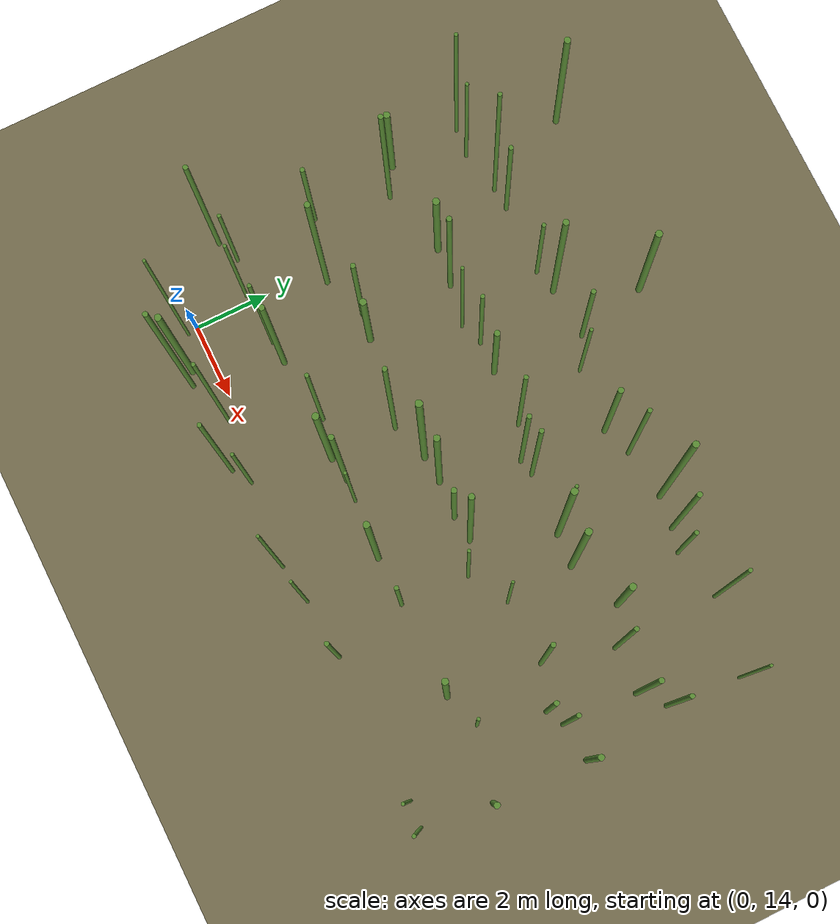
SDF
<sdf version="1.9">
 <world name="bamboo_field">
  <model name="ground_plane">
   <static>true</static>
   <link name="link">
    <collision name="collision">
     <geometry><plane><normal>0 0 1</normal><size>80.0 80.0</size></plane></geometry>
    </collision>
    <visual name="visual">
     <geometry><plane><normal>0 0 1</normal><size>80.0 80.0</size></plane></geometry>
     <material><diffuse>0.45 0.42 0.30 1</diffuse></material>
    </visual>
   </link>
  </model>
  <model name="bamboo_1376">
   <static>true</static>
   <pose>0.06276575468001566 13.732099643668107 3.6653601888361687 0 0 0</pose>
   <link name="link">
    <collision name="collision">
     <geometry>
      <cylinder><radius>0.04054337881371032</radius><length>7.330720377672337</length></cylinder>
     </geometry>
    </collision>
    <visual name="visual">
     <geometry>
      <cylinder><radius>0.04054337881371032</radius><length>7.330720377672337</length></cylinder>
     </geometry>
     <material><diffuse>0.35 0.55 0.20 1</diffuse><specular>0.1 0.1 0.1 1</specular></material>
    </visual>
   </link>
  </model>
  <model name="bamboo_1377">
   <static>true</static>
   <pose>1.0050426130687504 13.415485267167915 3.003744874984532 0 0 0</pose>
   <link name="link">
    <collision name="collision">
     <geometry>
      <cylinder><radius>0.08595751150401873</radius><length>6.007489749969064</length></cylinder>
     </geometry>
    </collision>
    <visual name="visual">
     <geometry>
      <cylinder><radius>0.08595751150401873</radius><length>6.007489749969064</length></cylinder>
     </geometry>
     <material><diffuse>0.35 0.55 0.20 1</diffuse><specular>0.1 0.1 0.1 1</specular></material>
    </visual>
   </link>
  </model>
  <model name="bamboo_1378">
   <static>true</static>
   <pose>1.3588092464139743 13.267221054472156 3.9558525674204983 0 0 0</pose>
   <link name="link">
    <collision name="collision">
     <geometry>
      <cylinder><radius>0.06607505223809193</radius><length>7.911705134840997</length></cylinder>
     </geometry>
    </collision>
    <visual name="visual">
     <geometry>
      <cylinder><radius>0.06607505223809193</radius><length>7.911705134840997</length></cylinder>
     </geometry>
     <material><diffuse>0.35 0.55 0.20 1</diffuse><specular>0.1 0.1 0.1 1</specular></material>
    </visual>
   </link>
  </model>
  <model name="bamboo_1379">
   <static>true</static>
   <pose>2.6103394028904927 13.70811517669843 3.491991474866679 0 0 0</pose>
   <link name="link">
    <collision name="collision">
     <geometry>
      <cylinder><radius>0.049184688636103625</radius><length>6.983982949733358</length></cylinder>
     </geometry>
    </collision>
    <visual name="visual">
     <geometry>
      <cylinder><radius>0.049184688636103625</radius><length>6.983982949733358</length></cylinder>
     </geometry>
     <material><diffuse>0.35 0.55 0.20 1</diffuse><specular>0.1 0.1 0.1 1</specular></material>
    </visual>
   </link>
  </model>
  <model name="bamboo_1380">
   <static>true</static>
   <pose>3.824534511451273 13.234293135725002 3.2837816686198096 0 0 0</pose>
   <link name="link">
    <collision name="collision">
     <geometry>
      <cylinder><radius>0.05565948302026836</radius><length>6.567563337239619</length></cylinder>
     </geometry>
    </collision>
    <visual name="visual">
     <geometry>
      <cylinder><radius>0.05565948302026836</radius><length>6.567563337239619</length></cylinder>
     </geometry>
     <material><diffuse>0.35 0.55 0.20 1</diffuse><specular>0.1 0.1 0.1 1</specular></material>
    </visual>
   </link>
  </model>
  <model name="bamboo_1381">
   <static>true</static>
   <pose>4.321258643424014 13.541149201019804 2.2168017641365534 0 0 0</pose>
   <link name="link">
    <collision name="collision">
     <geometry>
      <cylinder><radius>0.04973652946573479</radius><length>4.433603528273107</length></cylinder>
     </geometry>
    </collision>
    <visual name="visual">
     <geometry>
      <cylinder><radius>0.04973652946573479</radius><length>4.433603528273107</length></cylinder>
     </geometry>
     <material><diffuse>0.35 0.55 0.20 1</diffuse><specular>0.1 0.1 0.1 1</specular></material>
    </visual>
   </link>
  </model>
  <model name="bamboo_1382">
   <static>true</static>
   <pose>6.64788413049963 13.335300162852972 3.1942215116467625 0 0 0</pose>
   <link name="link">
    <collision name="collision">
     <geometry>
      <cylinder><radius>0.043265958358313865</radius><length>6.388443023293525</length></cylinder>
     </geometry>
    </collision>
    <visual name="visual">
     <geometry>
      <cylinder><radius>0.043265958358313865</radius><length>6.388443023293525</length></cylinder>
     </geometry>
     <material><diffuse>0.35 0.55 0.20 1</diffuse><specular>0.1 0.1 0.1 1</specular></material>
    </visual>
   </link>
  </model>
  <model name="bamboo_1383">
   <static>true</static>
   <pose>7.722659875794584 13.514273853273298 2.5383360249555014 0 0 0</pose>
   <link name="link">
    <collision name="collision">
     <geometry>
      <cylinder><radius>0.04161833958340256</radius><length>5.076672049911003</length></cylinder>
     </geometry>
    </collision>
    <visual name="visual">
     <geometry>
      <cylinder><radius>0.04161833958340256</radius><length>5.076672049911003</length></cylinder>
     </geometry>
     <material><diffuse>0.35 0.55 0.20 1</diffuse><specular>0.1 0.1 0.1 1</specular></material>
    </visual>
   </link>
  </model>
  <model name="bamboo_1385">
   <static>true</static>
   <pose>9.33344064888018 13.626897771461467 2.389767413056976 0 0 0</pose>
   <link name="link">
    <collision name="collision">
     <geometry>
      <cylinder><radius>0.059906819425603774</radius><length>4.779534826113952</length></cylinder>
     </geometry>
    </collision>
    <visual name="visual">
     <geometry>
      <cylinder><radius>0.059906819425603774</radius><length>4.779534826113952</length></cylinder>
     </geometry>
     <material><diffuse>0.35 0.55 0.20 1</diffuse><specular>0.1 0.1 0.1 1</specular></material>
    </visual>
   </link>
  </model>
  <model name="bamboo_1388">
   <static>true</static>
   <pose>13.35888323042398 13.684149307770708 3.436925414675028 0 0 0</pose>
   <link name="link">
    <collision name="collision">
     <geometry>
      <cylinder><radius>0.044664543253488204</radius><length>6.873850829350056</length></cylinder>
     </geometry>
    </collision>
    <visual name="visual">
     <geometry>
      <cylinder><radius>0.044664543253488204</radius><length>6.873850829350056</length></cylinder>
     </geometry>
     <material><diffuse>0.35 0.55 0.20 1</diffuse><specular>0.1 0.1 0.1 1</specular></material>
    </visual>
   </link>
  </model>
  <model name="bamboo_1389">
   <static>true</static>
   <pose>14.062900400942523 13.629020531854424 3.927334718430339 0 0 0</pose>
   <link name="link">
    <collision name="collision">
     <geometry>
      <cylinder><radius>0.048052351323297854</radius><length>7.854669436860678</length></cylinder>
     </geometry>
    </collision>
    <visual name="visual">
     <geometry>
      <cylinder><radius>0.048052351323297854</radius><length>7.854669436860678</length></cylinder>
     </geometry>
     <material><diffuse>0.35 0.55 0.20 1</diffuse><specular>0.1 0.1 0.1 1</specular></material>
    </visual>
   </link>
  </model>
  <model name="bamboo_1439">
   <static>true</static>
   <pose>-1.8081427291935877 15.480619153829041 3.2280099928377997 0 0 0</pose>
   <link name="link">
    <collision name="collision">
     <geometry>
      <cylinder><radius>0.06419554963518531</radius><length>6.456019985675599</length></cylinder>
     </geometry>
    </collision>
    <visual name="visual">
     <geometry>
      <cylinder><radius>0.06419554963518531</radius><length>6.456019985675599</length></cylinder>
     </geometry>
     <material><diffuse>0.35 0.55 0.20 1</diffuse><specular>0.1 0.1 0.1 1</specular></material>
    </visual>
   </link>
  </model>
  <model name="bamboo_1440">
   <static>true</static>
   <pose>-1.1778752151965792 15.727968670633919 2.0591104855530586 0 0 0</pose>
   <link name="link">
    <collision name="collision">
     <geometry>
      <cylinder><radius>0.04964226298261835</radius><length>4.118220971106117</length></cylinder>
     </geometry>
    </collision>
    <visual name="visual">
     <geometry>
      <cylinder><radius>0.04964226298261835</radius><length>4.118220971106117</length></cylinder>
     </geometry>
     <material><diffuse>0.35 0.55 0.20 1</diffuse><specular>0.1 0.1 0.1 1</specular></material>
    </visual>
   </link>
  </model>
  <model name="bamboo_1441">
   <static>true</static>
   <pose>-0.2037857214381863 15.52358014399858 2.4339155708178524 0 0 0</pose>
   <link name="link">
    <collision name="collision">
     <geometry>
      <cylinder><radius>0.04573942284977897</radius><length>4.867831141635705</length></cylinder>
     </geometry>
    </collision>
    <visual name="visual">
     <geometry>
      <cylinder><radius>0.04573942284977897</radius><length>4.867831141635705</length></cylinder>
     </geometry>
     <material><diffuse>0.35 0.55 0.20 1</diffuse><specular>0.1 0.1 0.1 1</specular></material>
    </visual>
   </link>
  </model>
  <model name="bamboo_1442">
   <static>true</static>
   <pose>1.225294581158085 15.61373473175355 2.9631497442608703 0 0 0</pose>
   <link name="link">
    <collision name="collision">
     <geometry>
      <cylinder><radius>0.0533795266127834</radius><length>5.926299488521741</length></cylinder>
     </geometry>
    </collision>
    <visual name="visual">
     <geometry>
      <cylinder><radius>0.0533795266127834</radius><length>5.926299488521741</length></cylinder>
     </geometry>
     <material><diffuse>0.35 0.55 0.20 1</diffuse><specular>0.1 0.1 0.1 1</specular></material>
    </visual>
   </link>
  </model>
  <model name="bamboo_1443">
   <static>true</static>
   <pose>1.8374924568279287 15.649706872110336 2.9916034107813534 0 0 0</pose>
   <link name="link">
    <collision name="collision">
     <geometry>
      <cylinder><radius>0.07725972280241986</radius><length>5.983206821562707</length></cylinder>
     </geometry>
    </collision>
    <visual name="visual">
     <geometry>
      <cylinder><radius>0.07725972280241986</radius><length>5.983206821562707</length></cylinder>
     </geometry>
     <material><diffuse>0.35 0.55 0.20 1</diffuse><specular>0.1 0.1 0.1 1</specular></material>
    </visual>
   </link>
  </model>
  <model name="bamboo_1444">
   <static>true</static>
   <pose>3.639231330929693 15.906261573033762 2.7856518492533953 0 0 0</pose>
   <link name="link">
    <collision name="collision">
     <geometry>
      <cylinder><radius>0.054054138199192026</radius><length>5.5713036985067905</length></cylinder>
     </geometry>
    </collision>
    <visual name="visual">
     <geometry>
      <cylinder><radius>0.054054138199192026</radius><length>5.5713036985067905</length></cylinder>
     </geometry>
     <material><diffuse>0.35 0.55 0.20 1</diffuse><specular>0.1 0.1 0.1 1</specular></material>
    </visual>
   </link>
  </model>
  <model name="bamboo_1445">
   <static>true</static>
   <pose>4.673311737382143 15.666363491210515 2.9756635790090513 0 0 0</pose>
   <link name="link">
    <collision name="collision">
     <geometry>
      <cylinder><radius>0.08768810373621447</radius><length>5.951327158018103</length></cylinder>
     </geometry>
    </collision>
    <visual name="visual">
     <geometry>
      <cylinder><radius>0.08768810373621447</radius><length>5.951327158018103</length></cylinder>
     </geometry>
     <material><diffuse>0.35 0.55 0.20 1</diffuse><specular>0.1 0.1 0.1 1</specular></material>
    </visual>
   </link>
  </model>
  <model name="bamboo_1446">
   <static>true</static>
   <pose>5.354662394995448 15.766746790275224 3.214591300234882 0 0 0</pose>
   <link name="link">
    <collision name="collision">
     <geometry>
      <cylinder><radius>0.07114554811550643</radius><length>6.429182600469764</length></cylinder>
     </geometry>
    </collision>
    <visual name="visual">
     <geometry>
      <cylinder><radius>0.07114554811550643</radius><length>6.429182600469764</length></cylinder>
     </geometry>
     <material><diffuse>0.35 0.55 0.20 1</diffuse><specular>0.1 0.1 0.1 1</specular></material>
    </visual>
   </link>
  </model>
  <model name="bamboo_1447">
   <static>true</static>
   <pose>5.92735951433591 15.72769713306529 2.334498105785991 0 0 0</pose>
   <link name="link">
    <collision name="collision">
     <geometry>
      <cylinder><radius>0.0432133126442892</radius><length>4.668996211571982</length></cylinder>
     </geometry>
    </collision>
    <visual name="visual">
     <geometry>
      <cylinder><radius>0.0432133126442892</radius><length>4.668996211571982</length></cylinder>
     </geometry>
     <material><diffuse>0.35 0.55 0.20 1</diffuse><specular>0.1 0.1 0.1 1</specular></material>
    </visual>
   </link>
  </model>
  <model name="bamboo_1448">
   <static>true</static>
   <pose>7.514076878264197 15.61632470096504 3.2901959411856243 0 0 0</pose>
   <link name="link">
    <collision name="collision">
     <geometry>
      <cylinder><radius>0.08133432093160305</radius><length>6.580391882371249</length></cylinder>
     </geometry>
    </collision>
    <visual name="visual">
     <geometry>
      <cylinder><radius>0.08133432093160305</radius><length>6.580391882371249</length></cylinder>
     </geometry>
     <material><diffuse>0.35 0.55 0.20 1</diffuse><specular>0.1 0.1 0.1 1</specular></material>
    </visual>
   </link>
  </model>
  <model name="bamboo_1449">
   <static>true</static>
   <pose>8.8393918769388 15.630122365031541 2.1452806624052547 0 0 0</pose>
   <link name="link">
    <collision name="collision">
     <geometry>
      <cylinder><radius>0.05788722583849659</radius><length>4.2905613248105094</length></cylinder>
     </geometry>
    </collision>
    <visual name="visual">
     <geometry>
      <cylinder><radius>0.05788722583849659</radius><length>4.2905613248105094</length></cylinder>
     </geometry>
     <material><diffuse>0.35 0.55 0.20 1</diffuse><specular>0.1 0.1 0.1 1</specular></material>
    </visual>
   </link>
  </model>
  <model name="bamboo_1450">
   <static>true</static>
   <pose>11.443461290725995 15.639660984229462 3.797487947831284 0 0 0</pose>
   <link name="link">
    <collision name="collision">
     <geometry>
      <cylinder><radius>0.07976197105704294</radius><length>7.594975895662568</length></cylinder>
     </geometry>
    </collision>
    <visual name="visual">
     <geometry>
      <cylinder><radius>0.07976197105704294</radius><length>7.594975895662568</length></cylinder>
     </geometry>
     <material><diffuse>0.35 0.55 0.20 1</diffuse><specular>0.1 0.1 0.1 1</specular></material>
    </visual>
   </link>
  </model>
  <model name="bamboo_1451">
   <static>true</static>
   <pose>12.416566708669706 15.988099452556602 2.5560969370047095 0 0 0</pose>
   <link name="link">
    <collision name="collision">
     <geometry>
      <cylinder><radius>0.04514600968396615</radius><length>5.112193874009419</length></cylinder>
     </geometry>
    </collision>
    <visual name="visual">
     <geometry>
      <cylinder><radius>0.04514600968396615</radius><length>5.112193874009419</length></cylinder>
     </geometry>
     <material><diffuse>0.35 0.55 0.20 1</diffuse><specular>0.1 0.1 0.1 1</specular></material>
    </visual>
   </link>
  </model>
  <model name="bamboo_1452">
   <static>true</static>
   <pose>14.31614929662233 15.507733642531589 2.635566589435853 0 0 0</pose>
   <link name="link">
    <collision name="collision">
     <geometry>
      <cylinder><radius>0.07781006017148702</radius><length>5.271133178871706</length></cylinder>
     </geometry>
    </collision>
    <visual name="visual">
     <geometry>
      <cylinder><radius>0.07781006017148702</radius><length>5.271133178871706</length></cylinder>
     </geometry>
     <material><diffuse>0.35 0.55 0.20 1</diffuse><specular>0.1 0.1 0.1 1</specular></material>
    </visual>
   </link>
  </model>
  <model name="bamboo_1506">
   <static>true</static>
   <pose>-1.2953072074202074 18.02023917077137 2.108692468474196 0 0 0</pose>
   <link name="link">
    <collision name="collision">
     <geometry>
      <cylinder><radius>0.0630110376474254</radius><length>4.217384936948392</length></cylinder>
     </geometry>
    </collision>
    <visual name="visual">
     <geometry>
      <cylinder><radius>0.0630110376474254</radius><length>4.217384936948392</length></cylinder>
     </geometry>
     <material><diffuse>0.35 0.55 0.20 1</diffuse><specular>0.1 0.1 0.1 1</specular></material>
    </visual>
   </link>
  </model>
  <model name="bamboo_1507">
   <static>true</static>
   <pose>-0.036612629181539846 17.671228485794632 2.581153848252347 0 0 0</pose>
   <link name="link">
    <collision name="collision">
     <geometry>
      <cylinder><radius>0.044869953104086265</radius><length>5.162307696504694</length></cylinder>
     </geometry>
    </collision>
    <visual name="visual">
     <geometry>
      <cylinder><radius>0.044869953104086265</radius><length>5.162307696504694</length></cylinder>
     </geometry>
     <material><diffuse>0.35 0.55 0.20 1</diffuse><specular>0.1 0.1 0.1 1</specular></material>
    </visual>
   </link>
  </model>
  <model name="bamboo_1508">
   <static>true</static>
   <pose>0.3878199350193897 17.58285828298778 3.4787268447421695 0 0 0</pose>
   <link name="link">
    <collision name="collision">
     <geometry>
      <cylinder><radius>0.07372064996913852</radius><length>6.957453689484339</length></cylinder>
     </geometry>
    </collision>
    <visual name="visual">
     <geometry>
      <cylinder><radius>0.07372064996913852</radius><length>6.957453689484339</length></cylinder>
     </geometry>
     <material><diffuse>0.35 0.55 0.20 1</diffuse><specular>0.1 0.1 0.1 1</specular></material>
    </visual>
   </link>
  </model>
  <model name="bamboo_1509">
   <static>true</static>
   <pose>1.5813430416054775 18.035892155286362 2.4470871671297 0 0 0</pose>
   <link name="link">
    <collision name="collision">
     <geometry><cylinder><radius>0.06476523262873393</radius><length>4.8941743342594</length></cylinder></geometry>
    </collision>
    <visual name="visual">
     <geometry><cylinder><radius>0.06476523262873393</radius><length>4.8941743342594</length></cylinder></geometry>
     <material><diffuse>0.35 0.55 0.20 1</diffuse><specular>0.1 0.1 0.1 1</specular></material>
    </visual>
   </link>
  </model>
  <model name="bamboo_1510">
   <static>true</static>
   <pose>2.268191993035298 17.920755456147386 2.012901601279033 0 0 0</pose>
   <link name="link">
    <collision name="collision">
     <geometry>
      <cylinder><radius>0.08945793149491071</radius><length>4.025803202558066</length></cylinder>
     </geometry>
    </collision>
    <visual name="visual">
     <geometry>
      <cylinder><radius>0.08945793149491071</radius><length>4.025803202558066</length></cylinder>
     </geometry>
     <material><diffuse>0.35 0.55 0.20 1</diffuse><specular>0.1 0.1 0.1 1</specular></material>
    </visual>
   </link>
  </model>
  <model name="bamboo_1511">
   <static>true</static>
   <pose>4.665539769736106 17.47827038150614 3.6654529050857496 0 0 0</pose>
   <link name="link">
    <collision name="collision">
     <geometry>
      <cylinder><radius>0.06368712016368522</radius><length>7.330905810171499</length></cylinder>
     </geometry>
    </collision>
    <visual name="visual">
     <geometry>
      <cylinder><radius>0.06368712016368522</radius><length>7.330905810171499</length></cylinder>
     </geometry>
     <material><diffuse>0.35 0.55 0.20 1</diffuse><specular>0.1 0.1 0.1 1</specular></material>
    </visual>
   </link>
  </model>
  <model name="bamboo_1512">
   <static>true</static>
   <pose>5.692797785457245 17.822016641567693 3.6405419146258806 0 0 0</pose>
   <link name="link">
    <collision name="collision">
     <geometry>
      <cylinder><radius>0.08913481331767288</radius><length>7.281083829251761</length></cylinder>
     </geometry>
    </collision>
    <visual name="visual">
     <geometry>
      <cylinder><radius>0.08913481331767288</radius><length>7.281083829251761</length></cylinder>
     </geometry>
     <material><diffuse>0.35 0.55 0.20 1</diffuse><specular>0.1 0.1 0.1 1</specular></material>
    </visual>
   </link>
  </model>
  <model name="bamboo_1513">
   <static>true</static>
   <pose>6.434915395688784 17.8846511836527 3.2343170363187275 0 0 0</pose>
   <link name="link">
    <collision name="collision">
     <geometry>
      <cylinder><radius>0.08296569438955162</radius><length>6.468634072637455</length></cylinder>
     </geometry>
    </collision>
    <visual name="visual">
     <geometry>
      <cylinder><radius>0.08296569438955162</radius><length>6.468634072637455</length></cylinder>
     </geometry>
     <material><diffuse>0.35 0.55 0.20 1</diffuse><specular>0.1 0.1 0.1 1</specular></material>
    </visual>
   </link>
  </model>
  <model name="bamboo_1514">
   <static>true</static>
   <pose>7.425356251937238 17.82198988622026 2.3415509836601465 0 0 0</pose>
   <link name="link">
    <collision name="collision">
     <geometry>
      <cylinder><radius>0.07287326814259659</radius><length>4.683101967320293</length></cylinder>
     </geometry>
    </collision>
    <visual name="visual">
     <geometry>
      <cylinder><radius>0.07287326814259659</radius><length>4.683101967320293</length></cylinder>
     </geometry>
     <material><diffuse>0.35 0.55 0.20 1</diffuse><specular>0.1 0.1 0.1 1</specular></material>
    </visual>
   </link>
  </model>
  <model name="bamboo_1515">
   <static>true</static>
   <pose>8.141729202756254 17.906702929883025 3.9181828288549747 0 0 0</pose>
   <link name="link">
    <collision name="collision">
     <geometry>
      <cylinder><radius>0.0733767764642908</radius><length>7.836365657709949</length></cylinder>
     </geometry>
    </collision>
    <visual name="visual">
     <geometry>
      <cylinder><radius>0.0733767764642908</radius><length>7.836365657709949</length></cylinder>
     </geometry>
     <material><diffuse>0.35 0.55 0.20 1</diffuse><specular>0.1 0.1 0.1 1</specular></material>
    </visual>
   </link>
  </model>
  <model name="bamboo_1516">
   <static>true</static>
   <pose>8.950513064757757 17.458892629486407 2.833792937002981 0 0 0</pose>
   <link name="link">
    <collision name="collision">
     <geometry>
      <cylinder><radius>0.04536679195760328</radius><length>5.667585874005962</length></cylinder>
     </geometry>
    </collision>
    <visual name="visual">
     <geometry>
      <cylinder><radius>0.04536679195760328</radius><length>5.667585874005962</length></cylinder>
     </geometry>
     <material><diffuse>0.35 0.55 0.20 1</diffuse><specular>0.1 0.1 0.1 1</specular></material>
    </visual>
   </link>
  </model>
  <model name="bamboo_1517">
   <static>true</static>
   <pose>9.987539198888337 18.064567849690093 2.605523139746242 0 0 0</pose>
   <link name="link">
    <collision name="collision">
     <geometry>
      <cylinder><radius>0.040550982199809724</radius><length>5.211046279492484</length></cylinder>
     </geometry>
    </collision>
    <visual name="visual">
     <geometry>
      <cylinder><radius>0.040550982199809724</radius><length>5.211046279492484</length></cylinder>
     </geometry>
     <material><diffuse>0.35 0.55 0.20 1</diffuse><specular>0.1 0.1 0.1 1</specular></material>
    </visual>
   </link>
  </model>
  <model name="bamboo_1518">
   <static>true</static>
   <pose>11.740569694016155 18.12654074831334 3.4461305358760086 0 0 0</pose>
   <link name="link">
    <collision name="collision">
     <geometry>
      <cylinder><radius>0.06339535537452406</radius><length>6.892261071752017</length></cylinder>
     </geometry>
    </collision>
    <visual name="visual">
     <geometry>
      <cylinder><radius>0.06339535537452406</radius><length>6.892261071752017</length></cylinder>
     </geometry>
     <material><diffuse>0.35 0.55 0.20 1</diffuse><specular>0.1 0.1 0.1 1</specular></material>
    </visual>
   </link>
  </model>
  <model name="bamboo_1519">
   <static>true</static>
   <pose>12.884193163498594 17.71275019635519 2.69766816351638 0 0 0</pose>
   <link name="link">
    <collision name="collision">
     <geometry>
      <cylinder><radius>0.06516028106614206</radius><length>5.39533632703276</length></cylinder>
     </geometry>
    </collision>
    <visual name="visual">
     <geometry>
      <cylinder><radius>0.06516028106614206</radius><length>5.39533632703276</length></cylinder>
     </geometry>
     <material><diffuse>0.35 0.55 0.20 1</diffuse><specular>0.1 0.1 0.1 1</specular></material>
    </visual>
   </link>
  </model>
  <model name="bamboo_1520">
   <static>true</static>
   <pose>13.35244599388399 17.93994080147356 3.4384182179443203 0 0 0</pose>
   <link name="link">
    <collision name="collision">
     <geometry>
      <cylinder><radius>0.05759335013327501</radius><length>6.876836435888641</length></cylinder>
     </geometry>
    </collision>
    <visual name="visual">
     <geometry>
      <cylinder><radius>0.05759335013327501</radius><length>6.876836435888641</length></cylinder>
     </geometry>
     <material><diffuse>0.35 0.55 0.20 1</diffuse><specular>0.1 0.1 0.1 1</specular></material>
    </visual>
   </link>
  </model>
  <model name="bamboo_1521">
   <static>true</static>
   <pose>14.405371097653632 18.080625184735236 2.605859770230605 0 0 0</pose>
   <link name="link">
    <collision name="collision">
     <geometry>
      <cylinder><radius>0.07813037934096304</radius><length>5.21171954046121</length></cylinder>
     </geometry>
    </collision>
    <visual name="visual">
     <geometry>
      <cylinder><radius>0.07813037934096304</radius><length>5.21171954046121</length></cylinder>
     </geometry>
     <material><diffuse>0.35 0.55 0.20 1</diffuse><specular>0.1 0.1 0.1 1</specular></material>
    </visual>
   </link>
  </model>
  <model name="bamboo_1576">
   <static>true</static>
   <pose>-1.6797496193544066 20.476362319038017 2.0510705725287215 0 0 0</pose>
   <link name="link">
    <collision name="collision">
     <geometry>
      <cylinder><radius>0.0855936329779131</radius><length>4.102141145057443</length></cylinder>
     </geometry>
    </collision>
    <visual name="visual">
     <geometry>
      <cylinder><radius>0.0855936329779131</radius><length>4.102141145057443</length></cylinder>
     </geometry>
     <material><diffuse>0.35 0.55 0.20 1</diffuse><specular>0.1 0.1 0.1 1</specular></material>
    </visual>
   </link>
  </model>
  <model name="bamboo_1577">
   <static>true</static>
   <pose>-0.9609209419964548 20.061146473229734 3.162972997320298 0 0 0</pose>
   <link name="link">
    <collision name="collision">
     <geometry>
      <cylinder><radius>0.0654091135350865</radius><length>6.325945994640596</length></cylinder>
     </geometry>
    </collision>
    <visual name="visual">
     <geometry>
      <cylinder><radius>0.0654091135350865</radius><length>6.325945994640596</length></cylinder>
     </geometry>
     <material><diffuse>0.35 0.55 0.20 1</diffuse><specular>0.1 0.1 0.1 1</specular></material>
    </visual>
   </link>
  </model>
  <model name="bamboo_1578">
   <static>true</static>
   <pose>0.8751547566339384 20.56560087830978 2.156889944600751 0 0 0</pose>
   <link name="link">
    <collision name="collision">
     <geometry>
      <cylinder><radius>0.08989104257867189</radius><length>4.313779889201502</length></cylinder>
     </geometry>
    </collision>
    <visual name="visual">
     <geometry>
      <cylinder><radius>0.08989104257867189</radius><length>4.313779889201502</length></cylinder>
     </geometry>
     <material><diffuse>0.35 0.55 0.20 1</diffuse><specular>0.1 0.1 0.1 1</specular></material>
    </visual>
   </link>
  </model>
  <model name="bamboo_1579">
   <static>true</static>
   <pose>1.9035252333894421 20.423870332030873 3.0964660604886896 0 0 0</pose>
   <link name="link">
    <collision name="collision">
     <geometry>
      <cylinder><radius>0.06872196235892339</radius><length>6.192932120977379</length></cylinder>
     </geometry>
    </collision>
    <visual name="visual">
     <geometry>
      <cylinder><radius>0.06872196235892339</radius><length>6.192932120977379</length></cylinder>
     </geometry>
     <material><diffuse>0.35 0.55 0.20 1</diffuse><specular>0.1 0.1 0.1 1</specular></material>
    </visual>
   </link>
  </model>
  <model name="bamboo_1580">
   <static>true</static>
   <pose>3.017020832408596 20.21945055923445 2.9446583190440796 0 0 0</pose>
   <link name="link">
    <collision name="collision">
     <geometry>
      <cylinder><radius>0.04257157519724295</radius><length>5.889316638088159</length></cylinder>
     </geometry>
    </collision>
    <visual name="visual">
     <geometry>
      <cylinder><radius>0.04257157519724295</radius><length>5.889316638088159</length></cylinder>
     </geometry>
     <material><diffuse>0.35 0.55 0.20 1</diffuse><specular>0.1 0.1 0.1 1</specular></material>
    </visual>
   </link>
  </model>
  <model name="bamboo_1581">
   <static>true</static>
   <pose>3.62773161104045 20.448088759415985 2.4880579907996134 0 0 0</pose>
   <link name="link">
    <collision name="collision">
     <geometry>
      <cylinder><radius>0.05465326544309762</radius><length>4.976115981599227</length></cylinder>
     </geometry>
    </collision>
    <visual name="visual">
     <geometry>
      <cylinder><radius>0.05465326544309762</radius><length>4.976115981599227</length></cylinder>
     </geometry>
     <material><diffuse>0.35 0.55 0.20 1</diffuse><specular>0.1 0.1 0.1 1</specular></material>
    </visual>
   </link>
  </model>
  <model name="bamboo_1582">
   <static>true</static>
   <pose>4.471098787875372 20.42369720054601 2.2308338387768436 0 0 0</pose>
   <link name="link">
    <collision name="collision">
     <geometry>
      <cylinder><radius>0.07740941396817447</radius><length>4.461667677553687</length></cylinder>
     </geometry>
    </collision>
    <visual name="visual">
     <geometry>
      <cylinder><radius>0.07740941396817447</radius><length>4.461667677553687</length></cylinder>
     </geometry>
     <material><diffuse>0.35 0.55 0.20 1</diffuse><specular>0.1 0.1 0.1 1</specular></material>
    </visual>
   </link>
  </model>
  <model name="bamboo_1583">
   <static>true</static>
   <pose>5.994701824175263 20.368069318576367 3.0112868856853807 0 0 0</pose>
   <link name="link">
    <collision name="collision">
     <geometry>
      <cylinder><radius>0.05759923046844345</radius><length>6.022573771370761</length></cylinder>
     </geometry>
    </collision>
    <visual name="visual">
     <geometry>
      <cylinder><radius>0.05759923046844345</radius><length>6.022573771370761</length></cylinder>
     </geometry>
     <material><diffuse>0.35 0.55 0.20 1</diffuse><specular>0.1 0.1 0.1 1</specular></material>
    </visual>
   </link>
  </model>
  <model name="bamboo_1584">
   <static>true</static>
   <pose>6.875293141659444 19.998435250631882 3.1386845086190265 0 0 0</pose>
   <link name="link">
    <collision name="collision">
     <geometry>
      <cylinder><radius>0.0609425114951146</radius><length>6.277369017238053</length></cylinder>
     </geometry>
    </collision>
    <visual name="visual">
     <geometry>
      <cylinder><radius>0.0609425114951146</radius><length>6.277369017238053</length></cylinder>
     </geometry>
     <material><diffuse>0.35 0.55 0.20 1</diffuse><specular>0.1 0.1 0.1 1</specular></material>
    </visual>
   </link>
  </model>
  <model name="bamboo_1585">
   <static>true</static>
   <pose>7.308288865824422 20.092933636933708 3.1695106724784172 0 0 0</pose>
   <link name="link">
    <collision name="collision">
     <geometry>
      <cylinder><radius>0.060380871994087516</radius><length>6.3390213449568344</length></cylinder>
     </geometry>
    </collision>
    <visual name="visual">
     <geometry>
      <cylinder><radius>0.060380871994087516</radius><length>6.3390213449568344</length></cylinder>
     </geometry>
     <material><diffuse>0.35 0.55 0.20 1</diffuse><specular>0.1 0.1 0.1 1</specular></material>
    </visual>
   </link>
  </model>
  <model name="bamboo_1586">
   <static>true</static>
   <pose>8.714618259335134 20.313946594989748 2.8420451805744458 0 0 0</pose>
   <link name="link">
    <collision name="collision">
     <geometry>
      <cylinder><radius>0.04407529786545887</radius><length>5.6840903611488915</length></cylinder>
     </geometry>
    </collision>
    <visual name="visual">
     <geometry>
      <cylinder><radius>0.04407529786545887</radius><length>5.6840903611488915</length></cylinder>
     </geometry>
     <material><diffuse>0.35 0.55 0.20 1</diffuse><specular>0.1 0.1 0.1 1</specular></material>
    </visual>
   </link>
  </model>
  <model name="bamboo_1587">
   <static>true</static>
   <pose>8.990255316501214 19.995290561318082 3.7528113939474395 0 0 0</pose>
   <link name="link">
    <collision name="collision">
     <geometry>
      <cylinder><radius>0.08499362341311413</radius><length>7.505622787894879</length></cylinder>
     </geometry>
    </collision>
    <visual name="visual">
     <geometry>
      <cylinder><radius>0.08499362341311413</radius><length>7.505622787894879</length></cylinder>
     </geometry>
     <material><diffuse>0.35 0.55 0.20 1</diffuse><specular>0.1 0.1 0.1 1</specular></material>
    </visual>
   </link>
  </model>
  <model name="bamboo_1588">
   <static>true</static>
   <pose>9.873225755384558 19.93459133752153 3.485707984879544 0 0 0</pose>
   <link name="link">
    <collision name="collision">
     <geometry>
      <cylinder><radius>0.0865062582753078</radius><length>6.971415969759088</length></cylinder>
     </geometry>
    </collision>
    <visual name="visual">
     <geometry>
      <cylinder><radius>0.0865062582753078</radius><length>6.971415969759088</length></cylinder>
     </geometry>
     <material><diffuse>0.35 0.55 0.20 1</diffuse><specular>0.1 0.1 0.1 1</specular></material>
    </visual>
   </link>
  </model>
  <model name="bamboo_1589">
   <static>true</static>
   <pose>11.264131127225363 20.55377447171956 2.264755510015742 0 0 0</pose>
   <link name="link">
    <collision name="collision">
     <geometry>
      <cylinder><radius>0.08949667419232976</radius><length>4.529511020031484</length></cylinder>
     </geometry>
    </collision>
    <visual name="visual">
     <geometry>
      <cylinder><radius>0.08949667419232976</radius><length>4.529511020031484</length></cylinder>
     </geometry>
     <material><diffuse>0.35 0.55 0.20 1</diffuse><specular>0.1 0.1 0.1 1</specular></material>
    </visual>
   </link>
  </model>
  <model name="bamboo_1590">
   <static>true</static>
   <pose>12.217407750294122 19.994059119989615 3.1138815617775157 0 0 0</pose>
   <link name="link">
    <collision name="collision">
     <geometry>
      <cylinder><radius>0.06011587533985402</radius><length>6.2277631235550315</length></cylinder>
     </geometry>
    </collision>
    <visual name="visual">
     <geometry>
      <cylinder><radius>0.06011587533985402</radius><length>6.2277631235550315</length></cylinder>
     </geometry>
     <material><diffuse>0.35 0.55 0.20 1</diffuse><specular>0.1 0.1 0.1 1</specular></material>
    </visual>
   </link>
  </model>
  <model name="bamboo_1591">
   <static>true</static>
   <pose>13.473883693099811 19.94240475817432 3.233259187754568 0 0 0</pose>
   <link name="link">
    <collision name="collision">
     <geometry>
      <cylinder><radius>0.06957390010683143</radius><length>6.466518375509136</length></cylinder>
     </geometry>
    </collision>
    <visual name="visual">
     <geometry>
      <cylinder><radius>0.06957390010683143</radius><length>6.466518375509136</length></cylinder>
     </geometry>
     <material><diffuse>0.35 0.55 0.20 1</diffuse><specular>0.1 0.1 0.1 1</specular></material>
    </visual>
   </link>
  </model>
  <model name="bamboo_1592">
   <static>true</static>
   <pose>14.088316790054426 20.49510164001512 2.8177494500701425 0 0 0</pose>
   <link name="link">
    <collision name="collision">
     <geometry>
      <cylinder><radius>0.06244476709912501</radius><length>5.635498900140285</length></cylinder>
     </geometry>
    </collision>
    <visual name="visual">
     <geometry>
      <cylinder><radius>0.06244476709912501</radius><length>5.635498900140285</length></cylinder>
     </geometry>
     <material><diffuse>0.35 0.55 0.20 1</diffuse><specular>0.1 0.1 0.1 1</specular></material>
    </visual>
   </link>
  </model>
  <model name="bamboo_1647">
   <static>true</static>
   <pose>-1.8308085047540468 22.439538806714978 3.3880903436816907 0 0 0</pose>
   <link name="link">
    <collision name="collision">
     <geometry>
      <cylinder><radius>0.049383721351350704</radius><length>6.776180687363381</length></cylinder>
     </geometry>
    </collision>
    <visual name="visual">
     <geometry>
      <cylinder><radius>0.049383721351350704</radius><length>6.776180687363381</length></cylinder>
     </geometry>
     <material><diffuse>0.35 0.55 0.20 1</diffuse><specular>0.1 0.1 0.1 1</specular></material>
    </visual>
   </link>
  </model>
  <model name="bamboo_1648">
   <static>true</static>
   <pose>-1.0913681727934743 22.36603487268303 2.7009055858305624 0 0 0</pose>
   <link name="link">
    <collision name="collision">
     <geometry>
      <cylinder><radius>0.047822651068408786</radius><length>5.401811171661125</length></cylinder>
     </geometry>
    </collision>
    <visual name="visual">
     <geometry>
      <cylinder><radius>0.047822651068408786</radius><length>5.401811171661125</length></cylinder>
     </geometry>
     <material><diffuse>0.35 0.55 0.20 1</diffuse><specular>0.1 0.1 0.1 1</specular></material>
    </visual>
   </link>
  </model>
  <model name="bamboo_1649">
   <static>true</static>
   <pose>0.07641647697818266 22.616942084948285 3.64150886105762 0 0 0</pose>
   <link name="link">
    <collision name="collision">
     <geometry><cylinder><radius>0.0537290307448013</radius><length>7.28301772211524</length></cylinder></geometry>
    </collision>
    <visual name="visual">
     <geometry><cylinder><radius>0.0537290307448013</radius><length>7.28301772211524</length></cylinder></geometry>
     <material><diffuse>0.35 0.55 0.20 1</diffuse><specular>0.1 0.1 0.1 1</specular></material>
    </visual>
   </link>
  </model>
  <model name="bamboo_1650">
   <static>true</static>
   <pose>0.6697632895372025 22.66937151462307 2.509498768465404 0 0 0</pose>
   <link name="link">
    <collision name="collision">
     <geometry>
      <cylinder><radius>0.06016341795560268</radius><length>5.018997536930808</length></cylinder>
     </geometry>
    </collision>
    <visual name="visual">
     <geometry>
      <cylinder><radius>0.06016341795560268</radius><length>5.018997536930808</length></cylinder>
     </geometry>
     <material><diffuse>0.35 0.55 0.20 1</diffuse><specular>0.1 0.1 0.1 1</specular></material>
    </visual>
   </link>
  </model>
  <model name="bamboo_1651">
   <static>true</static>
   <pose>2.5721242126794506 22.61893615864364 2.204644249777557 0 0 0</pose>
   <link name="link">
    <collision name="collision">
     <geometry>
      <cylinder><radius>0.05314688085155925</radius><length>4.409288499555114</length></cylinder>
     </geometry>
    </collision>
    <visual name="visual">
     <geometry>
      <cylinder><radius>0.05314688085155925</radius><length>4.409288499555114</length></cylinder>
     </geometry>
     <material><diffuse>0.35 0.55 0.20 1</diffuse><specular>0.1 0.1 0.1 1</specular></material>
    </visual>
   </link>
  </model>
  <model name="bamboo_1652">
   <static>true</static>
   <pose>3.21479306611301 22.772923922947804 3.1843399495597957 0 0 0</pose>
   <link name="link">
    <collision name="collision">
     <geometry>
      <cylinder><radius>0.07859893413387248</radius><length>6.368679899119591</length></cylinder>
     </geometry>
    </collision>
    <visual name="visual">
     <geometry>
      <cylinder><radius>0.07859893413387248</radius><length>6.368679899119591</length></cylinder>
     </geometry>
     <material><diffuse>0.35 0.55 0.20 1</diffuse><specular>0.1 0.1 0.1 1</specular></material>
    </visual>
   </link>
  </model>
  <model name="bamboo_1653">
   <static>true</static>
   <pose>4.617616887806486 22.90017527334635 2.3361987770001704 0 0 0</pose>
   <link name="link">
    <collision name="collision">
     <geometry>
      <cylinder><radius>0.06367034189749758</radius><length>4.672397554000341</length></cylinder>
     </geometry>
    </collision>
    <visual name="visual">
     <geometry>
      <cylinder><radius>0.06367034189749758</radius><length>4.672397554000341</length></cylinder>
     </geometry>
     <material><diffuse>0.35 0.55 0.20 1</diffuse><specular>0.1 0.1 0.1 1</specular></material>
    </visual>
   </link>
  </model>
  <model name="bamboo_1654">
   <static>true</static>
   <pose>5.418026616912539 22.43415072853317 2.329636774591565 0 0 0</pose>
   <link name="link">
    <collision name="collision">
     <geometry>
      <cylinder><radius>0.04732458276425799</radius><length>4.65927354918313</length></cylinder>
     </geometry>
    </collision>
    <visual name="visual">
     <geometry>
      <cylinder><radius>0.04732458276425799</radius><length>4.65927354918313</length></cylinder>
     </geometry>
     <material><diffuse>0.35 0.55 0.20 1</diffuse><specular>0.1 0.1 0.1 1</specular></material>
    </visual>
   </link>
  </model>
  <model name="bamboo_1655">
   <static>true</static>
   <pose>7.119122769744622 22.289921762849065 2.654178728201364 0 0 0</pose>
   <link name="link">
    <collision name="collision">
     <geometry>
      <cylinder><radius>0.07324211145627837</radius><length>5.308357456402728</length></cylinder>
     </geometry>
    </collision>
    <visual name="visual">
     <geometry>
      <cylinder><radius>0.07324211145627837</radius><length>5.308357456402728</length></cylinder>
     </geometry>
     <material><diffuse>0.35 0.55 0.20 1</diffuse><specular>0.1 0.1 0.1 1</specular></material>
    </visual>
   </link>
  </model>
  <model name="bamboo_1656">
   <static>true</static>
   <pose>7.9111515329818305 22.573204208617625 2.948956003114456 0 0 0</pose>
   <link name="link">
    <collision name="collision">
     <geometry>
      <cylinder><radius>0.05927649293327503</radius><length>5.897912006228912</length></cylinder>
     </geometry>
    </collision>
    <visual name="visual">
     <geometry>
      <cylinder><radius>0.05927649293327503</radius><length>5.897912006228912</length></cylinder>
     </geometry>
     <material><diffuse>0.35 0.55 0.20 1</diffuse><specular>0.1 0.1 0.1 1</specular></material>
    </visual>
   </link>
  </model>
  <model name="bamboo_1657">
   <static>true</static>
   <pose>9.267035406145473 22.791337669143314 3.9107202465253517 0 0 0</pose>
   <link name="link">
    <collision name="collision">
     <geometry>
      <cylinder><radius>0.08210956104617542</radius><length>7.821440493050703</length></cylinder>
     </geometry>
    </collision>
    <visual name="visual">
     <geometry>
      <cylinder><radius>0.08210956104617542</radius><length>7.821440493050703</length></cylinder>
     </geometry>
     <material><diffuse>0.35 0.55 0.20 1</diffuse><specular>0.1 0.1 0.1 1</specular></material>
    </visual>
   </link>
  </model>
  <model name="bamboo_1658">
   <static>true</static>
   <pose>10.142007063309062 22.68757152499991 2.98018700920194 0 0 0</pose>
   <link name="link">
    <collision name="collision">
     <geometry>
      <cylinder><radius>0.06802429327430085</radius><length>5.96037401840388</length></cylinder>
     </geometry>
    </collision>
    <visual name="visual">
     <geometry>
      <cylinder><radius>0.06802429327430085</radius><length>5.96037401840388</length></cylinder>
     </geometry>
     <material><diffuse>0.35 0.55 0.20 1</diffuse><specular>0.1 0.1 0.1 1</specular></material>
    </visual>
   </link>
  </model>
  <model name="bamboo_1659">
   <static>true</static>
   <pose>10.768874581013492 22.534067331838138 2.0505911091884736 0 0 0</pose>
   <link name="link">
    <collision name="collision">
     <geometry>
      <cylinder><radius>0.05740902445391283</radius><length>4.101182218376947</length></cylinder>
     </geometry>
    </collision>
    <visual name="visual">
     <geometry>
      <cylinder><radius>0.05740902445391283</radius><length>4.101182218376947</length></cylinder>
     </geometry>
     <material><diffuse>0.35 0.55 0.20 1</diffuse><specular>0.1 0.1 0.1 1</specular></material>
    </visual>
   </link>
  </model>
  <model name="bamboo_1660">
   <static>true</static>
   <pose>12.179439276193403 22.865399219635904 3.1195880454226557 0 0 0</pose>
   <link name="link">
    <collision name="collision">
     <geometry>
      <cylinder><radius>0.050688998034959354</radius><length>6.239176090845311</length></cylinder>
     </geometry>
    </collision>
    <visual name="visual">
     <geometry>
      <cylinder><radius>0.050688998034959354</radius><length>6.239176090845311</length></cylinder>
     </geometry>
     <material><diffuse>0.35 0.55 0.20 1</diffuse><specular>0.1 0.1 0.1 1</specular></material>
    </visual>
   </link>
  </model>
  <model name="bamboo_1661">
   <static>true</static>
   <pose>14.27565172724576 22.46602141395122 2.620781396753364 0 0 0</pose>
   <link name="link">
    <collision name="collision">
     <geometry>
      <cylinder><radius>0.04028072691939339</radius><length>5.241562793506728</length></cylinder>
     </geometry>
    </collision>
    <visual name="visual">
     <geometry>
      <cylinder><radius>0.04028072691939339</radius><length>5.241562793506728</length></cylinder>
     </geometry>
     <material><diffuse>0.35 0.55 0.20 1</diffuse><specular>0.1 0.1 0.1 1</specular></material>
    </visual>
   </link>
  </model>
  <model name="bamboo_1714">
   <static>true</static>
   <pose>-0.9038401433937227 24.92699216139138 2.8668705666834122 0 0 0</pose>
   <link name="link">
    <collision name="collision">
     <geometry>
      <cylinder><radius>0.08184266586316624</radius><length>5.7337411333668244</length></cylinder>
     </geometry>
    </collision>
    <visual name="visual">
     <geometry>
      <cylinder><radius>0.08184266586316624</radius><length>5.7337411333668244</length></cylinder>
     </geometry>
     <material><diffuse>0.35 0.55 0.20 1</diffuse><specular>0.1 0.1 0.1 1</specular></material>
    </visual>
   </link>
  </model>
  <model name="bamboo_1718">
   <static>true</static>
   <pose>4.169839377991628 24.805492661688028 2.6363187893800095 0 0 0</pose>
   <link name="link">
    <collision name="collision">
     <geometry>
      <cylinder><radius>0.08879488111840808</radius><length>5.272637578760019</length></cylinder>
     </geometry>
    </collision>
    <visual name="visual">
     <geometry>
      <cylinder><radius>0.08879488111840808</radius><length>5.272637578760019</length></cylinder>
     </geometry>
     <material><diffuse>0.35 0.55 0.20 1</diffuse><specular>0.1 0.1 0.1 1</specular></material>
    </visual>
   </link>
  </model>
 </world>
</sdf>
